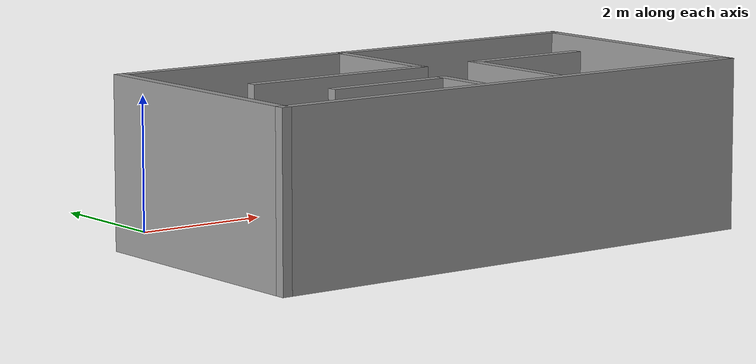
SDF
<?xml version='1.0'?>
<sdf version='1.7'>
  <model name='room'>
    <pose>2.89421 -2.48157 0 0 -0 0</pose>
    <link name='Wall_13'>
      <collision name='Wall_13_Collision'>
        <geometry>
          <box>
            <size>1 0.15 2.5</size>
          </box>
        </geometry>
        <pose>0 0 1.25 0 -0 0</pose>
      </collision>
      <visual name='Wall_13_Visual'>
        <pose>0 0 1.25 0 -0 0</pose>
        <geometry>
          <box>
            <size>1 0.15 2.5</size>
          </box>
        </geometry>
        <material>
          <script>
            <uri>file://media/materials/scripts/gazebo.material</uri>
            <name>Gazebo/Grey</name>
          </script>
          <ambient>1 1 1 1</ambient>
        </material>
        <meta>
          <layer>0</layer>
        </meta>
      </visual>
      <pose>-0.544 -1.91507 0 0 -0 1.5708</pose>
    </link>
    <link name='Wall_14'>
      <collision name='Wall_14_Collision'>
        <geometry>
          <box>
            <size>2 0.15 2.5</size>
          </box>
        </geometry>
        <pose>0 0 1.25 0 -0 0</pose>
      </collision>
      <visual name='Wall_14_Visual'>
        <pose>0 0 1.25 0 -0 0</pose>
        <geometry>
          <box>
            <size>2 0.15 2.5</size>
          </box>
        </geometry>
        <material>
          <script>
            <uri>file://media/materials/scripts/gazebo.material</uri>
            <name>Gazebo/Grey</name>
          </script>
          <ambient>1 1 1 1</ambient>
        </material>
        <meta>
          <layer>0</layer>
        </meta>
      </visual>
      <pose>-1.469 -1.49007 0 0 -0 3.14159</pose>
    </link>
    <link name='Wall_19'>
      <collision name='Wall_19_Collision'>
        <geometry>
          <box>
            <size>2 0.15 2.5</size>
          </box>
        </geometry>
        <pose>0 0 1.25 0 -0 0</pose>
      </collision>
      <visual name='Wall_19_Visual'>
        <pose>0 0 1.25 0 -0 0</pose>
        <geometry>
          <box>
            <size>2 0.15 2.5</size>
          </box>
        </geometry>
        <material>
          <script>
            <uri>file://media/materials/scripts/gazebo.material</uri>
            <name>Gazebo/Grey</name>
          </script>
          <ambient>1 1 1 1</ambient>
        </material>
        <meta>
          <layer>0</layer>
        </meta>
      </visual>
      <pose>-0.13 0.483926 0 0 -0 -1.5708</pose>
    </link>
    <link name='Wall_20'>
      <collision name='Wall_20_Collision'>
        <geometry>
          <box>
            <size>3 0.15 2.5</size>
          </box>
        </geometry>
        <pose>0 0 1.25 0 -0 0</pose>
      </collision>
      <visual name='Wall_20_Visual'>
        <pose>0 0 1.25 0 -0 0</pose>
        <geometry>
          <box>
            <size>3 0.15 2.5</size>
          </box>
        </geometry>
        <material>
          <script>
            <uri>file://media/materials/scripts/gazebo.material</uri>
            <name>Gazebo/Grey</name>
          </script>
          <ambient>1 1 1 1</ambient>
        </material>
        <meta>
          <layer>0</layer>
        </meta>
      </visual>
      <pose>-1.555 -0.441074 0 0 -0 3.14159</pose>
    </link>
    <link name='Wall_23'>
      <collision name='Wall_23_Collision'>
        <geometry>
          <box>
            <size>2 0.15 2.5</size>
          </box>
        </geometry>
        <pose>0 0 1.25 0 -0 0</pose>
      </collision>
      <visual name='Wall_23_Visual'>
        <pose>0 0 1.25 0 -0 0</pose>
        <geometry>
          <box>
            <size>2 0.15 2.5</size>
          </box>
        </geometry>
        <material>
          <script>
            <uri>file://media/materials/scripts/gazebo.material</uri>
            <name>Gazebo/Grey</name>
          </script>
          <ambient>1 1 1 1</ambient>
        </material>
        <meta>
          <layer>0</layer>
        </meta>
      </visual>
      <pose>0.813 -1.42657 0 0 -0 1.5708</pose>
    </link>
    <link name='Wall_24'>
      <collision name='Wall_24_Collision'>
        <geometry>
          <box>
            <size>2 0.15 2.5</size>
          </box>
        </geometry>
        <pose>0 0 1.25 0 -0 0</pose>
      </collision>
      <visual name='Wall_24_Visual'>
        <pose>0 0 1.25 0 -0 0</pose>
        <geometry>
          <box>
            <size>2 0.15 2.5</size>
          </box>
        </geometry>
        <material>
          <script>
            <uri>file://media/materials/scripts/gazebo.material</uri>
            <name>Gazebo/Grey</name>
          </script>
          <ambient>1 1 1 1</ambient>
        </material>
        <meta>
          <layer>0</layer>
        </meta>
      </visual>
      <pose>1.738 -0.501574 0 0 -0 0</pose>
    </link>
    <link name='Wall_5'>
      <collision name='Wall_5_Collision'>
        <geometry>
          <box>
            <size>8 0.15 2.5</size>
          </box>
        </geometry>
        <pose>0 0 1.25 0 -0 0</pose>
      </collision>
      <visual name='Wall_5_Visual'>
        <pose>0 0 1.25 0 -0 0</pose>
        <geometry>
          <box>
            <size>8 0.15 2.5</size>
          </box>
        </geometry>
        <material>
          <script>
            <uri>file://media/materials/scripts/gazebo.material</uri>
            <name>Gazebo/Grey</name>
          </script>
          <ambient>1 1 1 1</ambient>
        </material>
        <meta>
          <layer>0</layer>
        </meta>
      </visual>
      <pose>0 1.44343 0 0 -0 0</pose>
    </link>
    <link name='Wall_6'>
      <collision name='Wall_6_Collision'>
        <geometry>
          <box>
            <size>4 0.15 2.5</size>
          </box>
        </geometry>
        <pose>0 0 1.25 0 -0 0</pose>
      </collision>
      <visual name='Wall_6_Visual'>
        <pose>0 0 1.25 0 -0 0</pose>
        <geometry>
          <box>
            <size>4 0.15 2.5</size>
          </box>
        </geometry>
        <material>
          <script>
            <uri>file://media/materials/scripts/gazebo.material</uri>
            <name>Gazebo/Grey</name>
          </script>
          <ambient>1 1 1 1</ambient>
        </material>
        <meta>
          <layer>0</layer>
        </meta>
      </visual>
      <pose>3.925 -0.481574 0 0 -0 -1.5708</pose>
    </link>
    <link name='Wall_7'>
      <collision name='Wall_7_Collision'>
        <geometry>
          <box>
            <size>8 0.15 2.5</size>
          </box>
        </geometry>
        <pose>0 0 1.25 0 -0 0</pose>
      </collision>
      <visual name='Wall_7_Visual'>
        <pose>0 0 1.25 0 -0 0</pose>
        <geometry>
          <box>
            <size>8 0.15 2.5</size>
          </box>
        </geometry>
        <material>
          <script>
            <uri>file://media/materials/scripts/gazebo.material</uri>
            <name>Gazebo/Grey</name>
          </script>
          <ambient>1 1 1 1</ambient>
        </material>
        <meta>
          <layer>0</layer>
        </meta>
      </visual>
      <pose>0 -2.40657 0 0 -0 3.14159</pose>
    </link>
    <link name='Wall_8'>
      <collision name='Wall_8_Collision'>
        <geometry>
          <box>
            <size>4 0.15 2.5</size>
          </box>
        </geometry>
        <pose>0 0 1.25 0 -0 0</pose>
      </collision>
      <visual name='Wall_8_Visual'>
        <pose>0 0 1.25 0 -0 0</pose>
        <geometry>
          <box>
            <size>4 0.15 2.5</size>
          </box>
        </geometry>
        <material>
          <script>
            <uri>file://media/materials/scripts/gazebo.material</uri>
            <name>Gazebo/Grey</name>
          </script>
          <ambient>1 1 1 1</ambient>
        </material>
        <meta>
          <layer>0</layer>
        </meta>
      </visual>
      <pose>-3.925 -0.481574 0 0 -0 1.5708</pose>
    </link>
    <static>1</static>
  </model>
</sdf>
